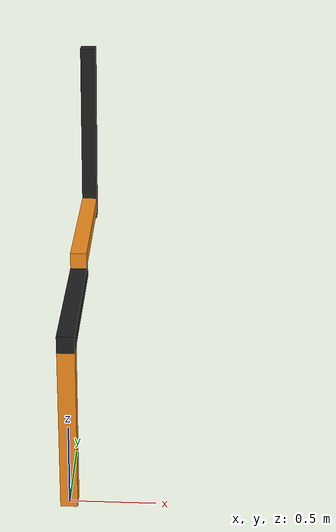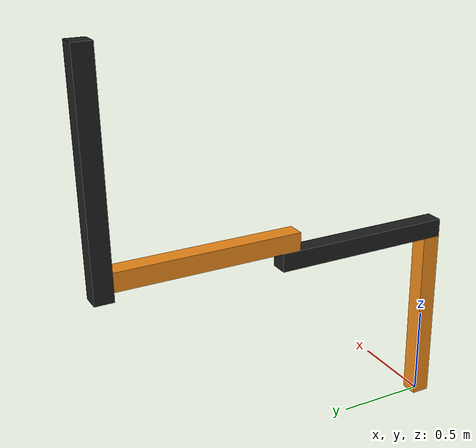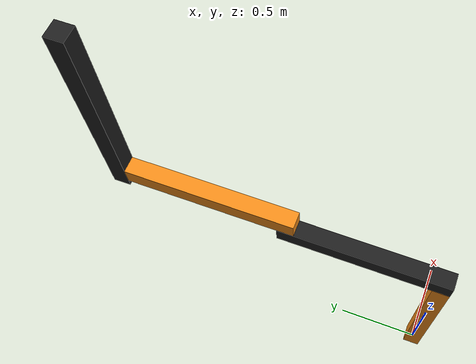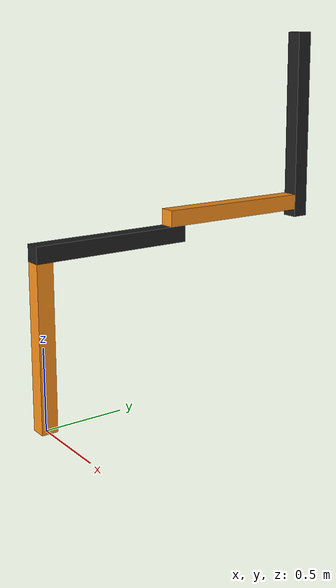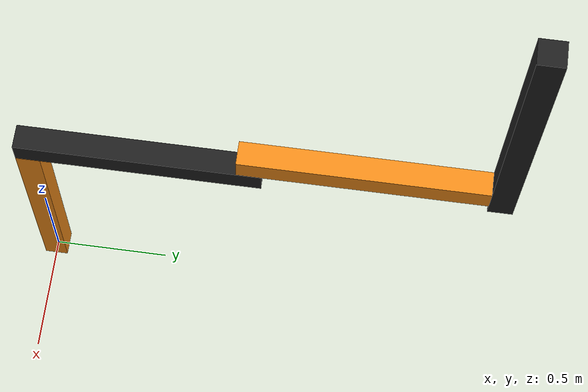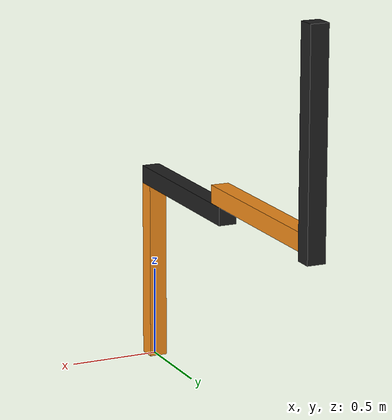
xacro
<?xml version="1.0"?>
<!-- Revolute-Revolute Manipulator -->
<robot name="rrbot" xmlns:xacro="http://www.ros.org/wiki/xacro">

  <!-- Constants for robot dimensions -->
  <xacro:property name="PI" value="3.1415926535897931"/>
  <xacro:property name="mass" value=".01" /> <!-- arbitrary value for mass -->
  <xacro:property name="width" value="0.1" /> <!-- Square dimensions (widthxwidth) of beams -->
  <xacro:property name="height1" value="1" /> <!-- Link 1 -->
  <xacro:property name="height2" value="1" /> <!-- Link 2 -->
  <xacro:property name="height3" value="1" /> <!-- Link 3 -->
  <xacro:property name="height4" value="1.2" /> <!-- Link 3 -->
  <xacro:property name="camera_link" value="0.05" /> <!-- Size of square 'camera' box -->
  <xacro:property name="axel_offset" value="0.05" /> <!-- Space btw top of beam and the each joint -->

  <!-- Import all Gazebo-customization elements, including Gazebo colors -->
  <xacro:include filename="$(find rbe500GroupProject)/urdf/rrbot.gazebo" />
  <!-- Import Rviz colors -->
  <xacro:include filename="$(find rbe500GroupProject)/urdf/materials.xacro" />

  <!-- Used for fixing robot to Gazebo 'base_link' -->
  <link name="world"/>

  <joint name="joint0" type="revolute">
    <parent link="world"/>
    <child link="link1"/>
    <limit effort="1000.0" lower="-3.14159" upper="3.14159" velocity="10"/>
    <origin xyz="0 0 0" rpy="0 0 0"/>
    <axis xyz="0 0 1"/>
    <dynamics damping="0.7"/>
  </joint>

  <!-- Base Link -->
  <link name="link1">
    <collision>
      <origin xyz="0 0 ${height1/2}" rpy="0 0 0"/>
      <geometry>
	<box size="${width} ${width} ${height1}"/>
      </geometry>
    </collision>

    <visual>
      <origin xyz="0 0 ${height1/2}" rpy="0 0 0"/>
      <geometry>
	<box size="${width} ${width} ${height1}"/>
      </geometry>
      <material name="orange"/>
    </visual>

    <inertial>
      <origin xyz="0 0 ${height1/2}" rpy="0 0 0"/>
      <mass value="${mass}"/>
      <inertia
	  ixx="${0}" ixy="0.0" ixz="0.0"
	  iyy="${0}" iyz="0.0"
	  izz="${0}"/>
    </inertial>
  </link>

  <joint name="joint1" type="fixed">
    <parent link="link1"/>
    <child link="link2"/>
    <origin xyz="0 0 ${height1+width/2}" rpy="0 0 0"/>
  </joint>

  <!-- Middle Link -->
  <link name="link2">
    <collision>
      <origin xyz="0 ${height2/2-(width/2)} 0" rpy="1.57 0 0"/>
      <geometry>
	<box size="${width} ${width} ${height2}"/>
      </geometry>
    </collision>

    <visual>
      <origin xyz="0 ${height2/2-(width/2)} 0" rpy="1.57 0 0"/>
      <geometry>
	<box size="${width} ${width} ${height2}"/>
      </geometry>
      <material name="black"/>
    </visual>

    <inertial>
       <origin xyz="0 ${height2/2-(width/2)} ${width/2}" rpy="1.57 0 0"/>
      <mass value="${mass}"/>
      <inertia
	  ixx="${0}" ixy="0.0" ixz="0.0"
	  iyy="${0}" iyz="0.0"
	  izz="${0}"/>
    </inertial>
  </link>

  <joint name="joint2" type="continuous">
    <limit effort="1000.0" lower="-3.14159" upper="3.14159" velocity="10"/>
    <parent link="link2"/>
    <child link="link3"/>
    <origin xyz="0 ${height2-(width)} 0" rpy="0 0 0"/>
    <axis xyz="0 0 1"/>
    <dynamics damping="0.7"/>
	<gravity>0</gravity>
  </joint>

  <!-- Top Link -->
  <link name="link3">
    <collision>
      <origin xyz="0 ${height3/2-width} ${width}" rpy="1.57 0 0"/>
      <geometry>
	<box size="${width} ${width} ${height3}"/>
      </geometry>
    </collision>

    <visual>
      <origin xyz="0 ${height3/2-(width/2)} ${width}" rpy="1.57 0 0"/>
      <geometry>
	<box size="${width} ${width} ${height3}"/>
      </geometry>
      <material name="orange"/>
    </visual>

    <inertial>
      <origin xyz="0 ${height3/2-width} ${width}" rpy="1.57 0 0"/>
      <mass value="${mass}"/>
      <inertia
	  ixx="${0}" ixy="0.0" ixz="0.0"
	  iyy="${0}" iyz="0.0"
	  izz="${0}"/>
    </inertial>
	<gravity>0</gravity>
  </link>

  <!-- prismatic Link -->
 <joint name="prismatic" type="prismatic">
    <parent link="link3"/>
    <child link="link4"/>
    <limit effort="1000.0" lower="0" upper="${height1+(width/2)}" velocity="0.5"/>
    <origin xyz="0 ${height3} 0" rpy="0 0 0"/>
    <axis xyz="0 0 -1"/>
    <dynamics damping="0.7"/>
	<gravity>0</gravity>
  </joint>

<link name="link4">
    <collision>
      <origin xyz="0 0 ${height4/2}" rpy="0 0 0"/>
      <geometry>
	<box size="${width} ${width} ${height4}"/>
      </geometry>
    </collision>

    <visual>
      <origin xyz="0 0 ${height4/2}" rpy="0 0 0"/>
      <geometry>
	<box size="${width} ${width} ${height4}"/>
      </geometry>
      <material name="black"/>
    </visual>

    <inertial>
      <origin xyz="0 0 ${height4/2}" rpy="0 0 0"/>
      <mass value="${mass}"/>
      <inertia
	  ixx="${mass / 12.0 * (width*width + height4*height4)}" ixy="0.0" ixz="0.0"
	  iyy="${mass / 12.0 * (height4*height4 + width*width)}" iyz="0.0"
	  izz="${mass / 12.0 * (width*width + width*width)}"/>
    </inertial>
	<gravity>0</gravity>
  </link>

  <transmission name="tran0">
    <type>transmission_interface/SimpleTransmission</type>
    <joint name="joint0">
<hardwareInterface>hardware_interface/VelocityJointInterface</hardwareInterface>
    </joint>
    <actuator name="motor0">
<hardwareInterface>hardware_interface/VelocityJointInterface</hardwareInterface>
      <mechanicalReduction>1</mechanicalReduction>
    </actuator>
  </transmission>

  <transmission name="tran2">
    <type>transmission_interface/SimpleTransmission</type>
    <joint name="joint2">
<hardwareInterface>hardware_interface/VelocityJointInterface</hardwareInterface>
    </joint>
    <actuator name="motor2">
<hardwareInterface>hardware_interface/VelocityJointInterface</hardwareInterface>
      <mechanicalReduction>1</mechanicalReduction>
    </actuator>
  </transmission>

 <transmission name="prismatic">
    <type>transmission_interface/SimpleTransmission</type>
    <joint name="prismatic">
<hardwareInterface>hardware_interface/VelocityJointInterface</hardwareInterface>
    </joint>
    <actuator name="motor3">
<hardwareInterface>hardware_interface/VelocityJointInterface</hardwareInterface>
      <mechanicalReduction>1</mechanicalReduction>
    </actuator>
  </transmission>

</robot>
